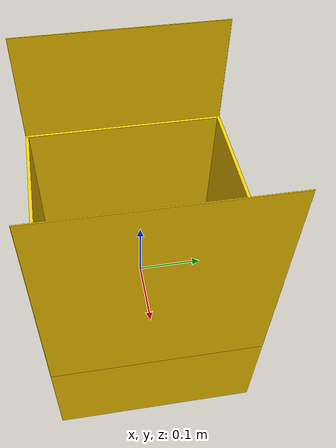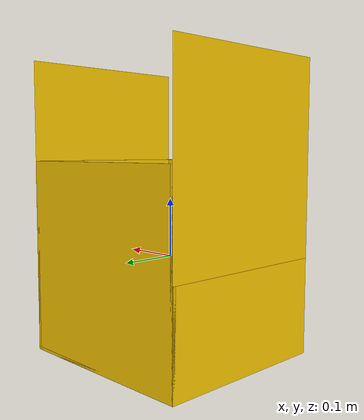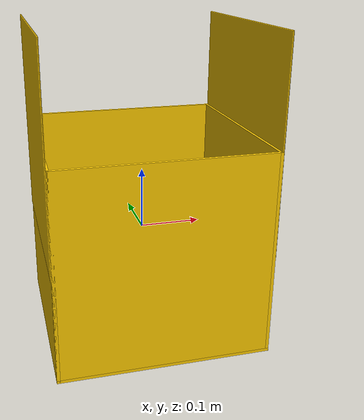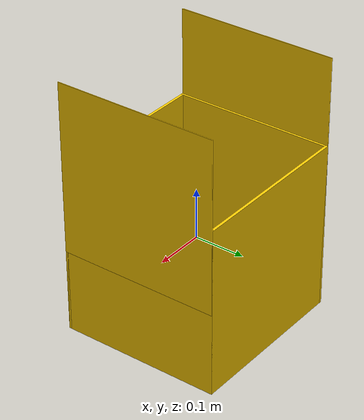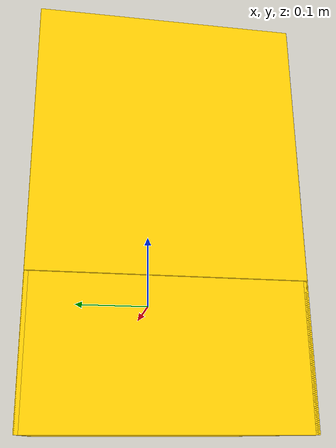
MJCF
<mujoco model="box">
    <compiler angle="radian" meshdir="../meshes/stl/" autolimits="true" />
    <default />
    <asset>
        <mesh name="BoxFlapSide1" file="BoxFlapSide1.stl" />
        <mesh name="BoxFlapSide2" file="BoxFlapSide2.stl" />
    </asset>
    <default>
		<default class="visual">
			<geom contype="0" conaffinity="0" />
		</default>
		<default class="collision">
			<geom rgba="1.0 0.0 0.0 0.5" />
		</default>
	</default>
    <worldbody>
        <body name="box">
            <geom size="0.17 0.16 0.0025" pos="0 0 -0.1675" type="box" rgba="1 0.8 0 1" class="collision"/>
            <geom size="0.002578 0.16 0.1675" pos="0.167578 0 -0.0025" type="box" rgba="1 0.8 0 1" class="collision"/>
            <geom size="0.002578 0.16 0.1675" pos="-0.167578 0 -0.0025" type="box" rgba="1 0.8 0 1" class="collision"/>
            <geom size="0.170156 0.0025 0.1675" pos="0 0.1575 -0.0025" type="box" rgba="1 0.8 0 1" class="collision"/>
            <geom size="0.170156 0.0025 0.1675" pos="0 -0.1575 -0.0025" type="box" rgba="1 0.8 0 1" class="collision"/>
            <body name="box_flap_side_1" pos="0.17 0 0.166" gravcomp="0">
                <joint name="box_flap_side_1_joint" axis="0 1 0" springref="1.57" stiffness="0.235" damping="0.01" />
                <geom type="mesh" mesh="BoxFlapSide1" rgba="1 0.8 0 1" class="collision"/>
            </body>
            <body name="box_flap_side_2" pos="-0.17 0 0.168" gravcomp="0">
                <joint name="box_flap_side_2_joint" axis="0 -1 0" stiffness="0.001" damping="0.01" />
                <geom type="mesh" mesh="BoxFlapSide2" rgba="1 0.8 0 1" class="collision"/>
            </body>
        </body>
    </worldbody>
    <equality />
    <contact />
</mujoco>
